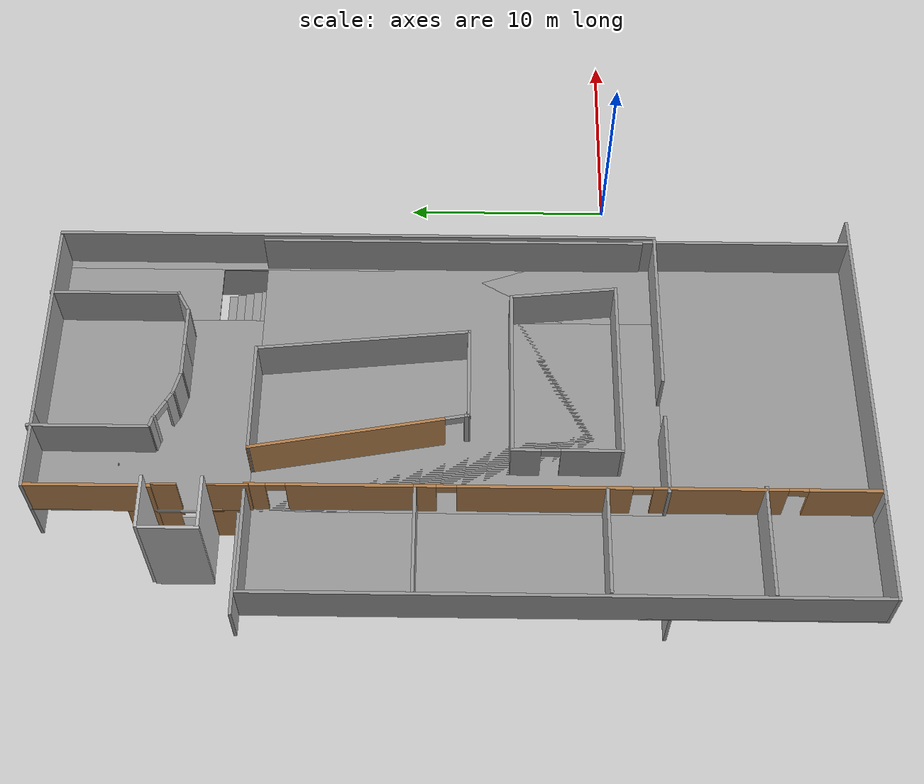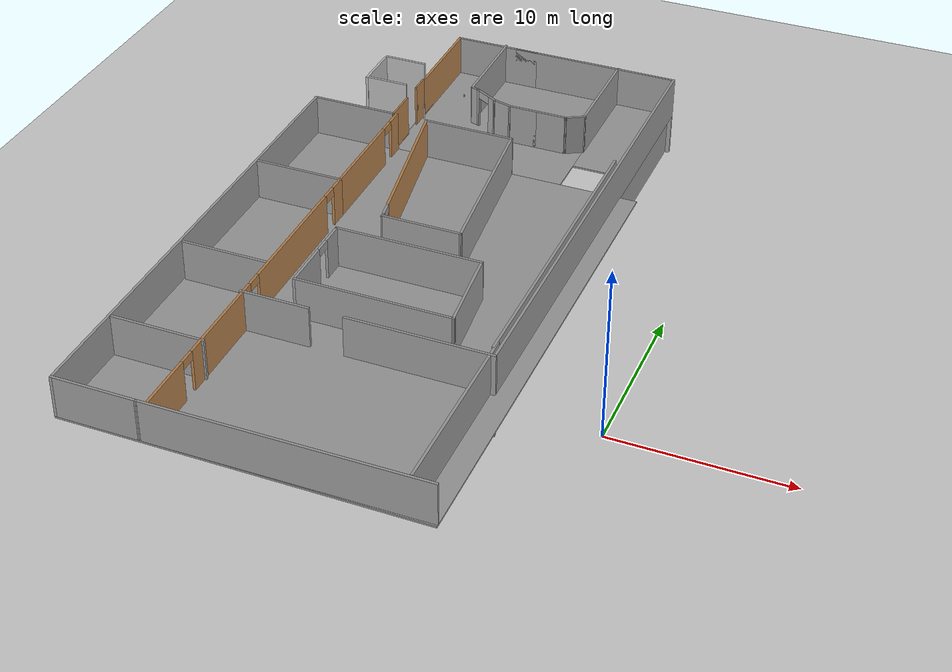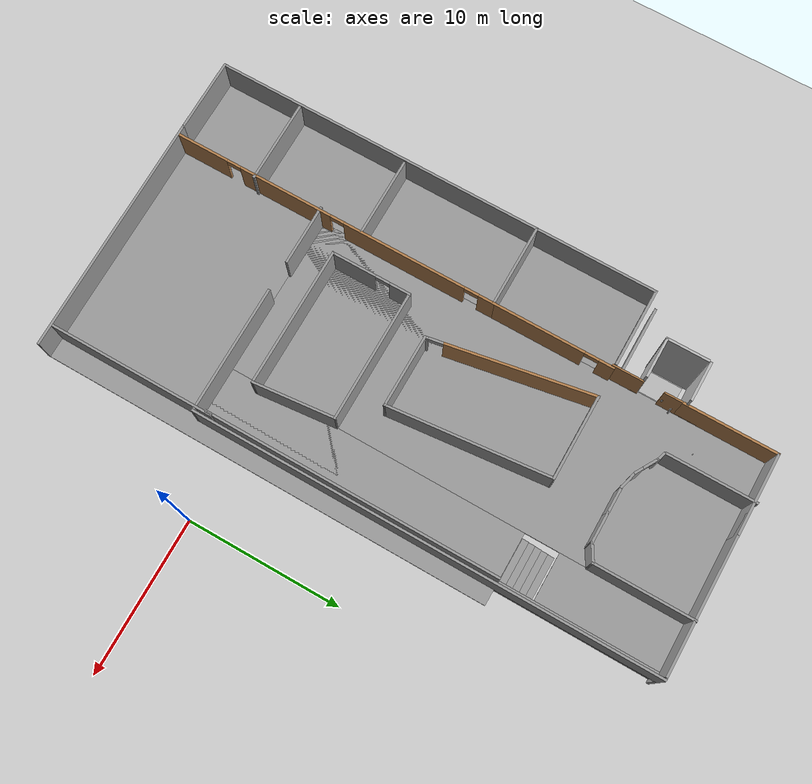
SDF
<sdf version="1.5">
 <world name="default">
  <light name="sun" type="directional">
   <pose>0 0 10 0 -0 0</pose>
   <diffuse>0.8 0.8 0.8 1</diffuse>
   <specular>0.2 0.2 0.2 1</specular>
   <attenuation>
    <range>1000</range>
    <constant>0.9</constant>
    <linear>0.01</linear>
    <quadratic>0.001</quadratic>
   </attenuation>
   <direction>-0.5 0.1 -0.9</direction>
  </light>
  <model name="ground_plane">
   <static>1</static>
   <link name="link">
    <collision name="collision">
     <geometry><plane><normal>0 0 1</normal><size>100 100</size></plane></geometry>
     <surface>
      <contact><collide_bitmask>65535</collide_bitmask></contact>
      <friction><ode><mu>100</mu><mu2>50</mu2></ode></friction>
     </surface>
    </collision>
    <visual name="visual">
     <cast_shadows>0</cast_shadows>
     <geometry><plane><normal>0 0 1</normal><size>100 100</size></plane></geometry>
     <material>
      <script><uri>file://media/materials/scripts/gazebo.material</uri><name>Gazebo/Grey</name></script>
     </material>
    </visual>
   </link>
  </model>
  <plugin name="elevator_event_plugin" filename="libSimEventsPlugin.so">
   <region><name>region1</name><volume><min>-18.64 20.19 1.02</min><max>-18.59 20.27 1.06</max></volume></region>
   <region><name>region2</name><volume><min>-18.65 20.18 3.6</min><max>-18.23 20.24 3.65</max></volume></region>
   <region><name>region_door1</name><volume><min>-18.86 18.8 2.6</min><max>-19.0 20.0 5.0</max></volume></region>
   <region><name>region_door0</name><volume><min>-18.86 18.8 0.1</min><max>-19.0 20.0 2.4</max></volume></region>
   <event>
    <name>region_door1_event</name>
    <type>occupied</type>
    <region>region_door1</region>
    <topic>~/elevator</topic>
    <msg_data>1</msg_data>
   </event>
   <event>
    <name>region_door0_event</name>
    <type>occupied</type>
    <region>region_door0</region>
    <topic>~/elevator</topic>
    <msg_data>0</msg_data>
   </event>
   <event>
    <name>region1_event</name>
    <type>occupied</type>
    <region>region1</region>
    <topic>~/elevator</topic>
    <msg_data>0</msg_data>
   </event>
   <event>
    <name>region2_event</name>
    <type>occupied</type>
    <region>region2</region>
    <topic>~/elevator</topic>
    <msg_data>1</msg_data>
   </event>
  </plugin>
  <model name="elevator">
   <pose>-20 20 0.001 -0 -0 -0</pose>
   <link name="link">
    <inertial>
     <mass>800</mass>
     <inertia><ixx>1</ixx><ixy>0</ixy><ixz>0</ixz><iyy>1</iyy><iyz>0</iyz><izz>1</izz></inertia>
    </inertial>
    <collision name="floor_collision"><geometry><box><size>2.25 2.25 0.02</size></box></geometry></collision>
    <visual name="floor_visual"><geometry><box><size>2.25 2.25 0.02</size></box></geometry></visual>
    <collision name="wall1_collision_bot_in">
     <pose>0.06 0.25 1.125 0 -0 0</pose>
     <geometry><box><size>0.01 0.09 0.36</size></box></geometry>
    </collision>
    <visual name="wall1_visual_bot_in">
     <pose>1 1.25 1.125 0 -0 1.577</pose>
     <geometry><box><size>0.01 0.09 0.36</size></box></geometry>
     <material>
      <script>
       <uri>model://elevator_shaft/materials/scripts</uri>
       <uri>model://elevator_shaft/materials/textures</uri>
       <name>Up_down/Diffuse</name>
      </script>
     </material>
    </visual>
   </link>
   <link name="ramp_new.SLDPRT">
    <pose>1.125 0.05  0 0 -0 -1.578</pose>
    <inertial>
     <pose>0.54997 0.16614 0.006311 0 -0 0</pose>
     <mass>500.1598</mass>
     <inertia>
      <ixx>0.071469</ixx>
      <ixy>-0.00013965</ixy>
      <ixz>-1.1196e-05</ixz>
      <iyy>0.50754</iyy>
      <iyz>-0.0013514</iyz>
      <izz>0.5788</izz>
     </inertia>
    </inertial>
    <collision name="ramp_new.SLDPRT_collision">
     <pose>0 0 0 1.5708 -0 0</pose>
     <geometry>
      <mesh><scale>1 1 1</scale><uri>model://ramp_new.SLDPRT/meshes/ramp_new.SLDPRT.STL</uri></mesh>
     </geometry>
    </collision>
    <visual name="ramp_new.SLDPRT_visual">
     <pose>0 0 0 1.5708 -0 0</pose>
     <geometry>
      <mesh><scale>1 1 1</scale><uri>model://ramp_new.SLDPRT/meshes/ramp_new.SLDPRT.STL</uri></mesh>
     </geometry>
    </visual>
   </link>
   <link name="door">
    <pose>1.0745 -0.5 1.125 0 -0 0</pose>
    <collision name="collision"><geometry><box><size>0.08 1.2 2.25</size></box></geometry></collision>
    <visual name="visual">
     <material>
      <script>
       <uri>model://elevator_door/materials/scripts</uri>
       <uri>model://elevator_door/materials/textures</uri>
       <name>Elevator_door/Picture</name>
      </script>
      <shader type="pixel"><normal_map>__default__</normal_map></shader>
      <ambient>1 1 1 1</ambient>
      <diffuse>1 1 1 1</diffuse>
      <specular>0 0 0 1</specular>
      <emissive>0 0 0 1</emissive>
     </material>
     <geometry><box><size>0.08 1.2 2.25</size></box></geometry>
    </visual>
    <inertial>
     <inertia><ixx>1</ixx><ixy>0</ixy><ixz>0</ixz><iyy>1</iyy><iyz>0</iyz><izz>1</izz></inertia>
     <mass>1</mass>
    </inertial>
   </link>
   <joint name="door" type="prismatic">
    <parent>link</parent>
    <child>door</child>
    <axis>
     <xyz>0 1 0</xyz>
     <limit><lower>0</lower><upper>1.19</upper><effort>0.525</effort></limit>
     <dynamics>
      <damping>1</damping>
      <spring_reference>0</spring_reference>
      <spring_stiffness>0</spring_stiffness>
     </dynamics>
     <use_parent_model_frame>0</use_parent_model_frame>
    </axis>
   </joint>
   <joint name="lift" type="prismatic">
    <parent>world</parent>
    <child>link</child>
    <axis>
     <xyz>0 0 1</xyz>
     <limit><lower>0</lower><upper>10</upper><effort>100000</effort></limit>
     <dynamics>
      <damping>50</damping>
      <spring_reference>0</spring_reference>
      <spring_stiffness>0</spring_stiffness>
     </dynamics>
     <use_parent_model_frame>0</use_parent_model_frame>
    </axis>
    <physics>
     <ode><implicit_spring_damper>1</implicit_spring_damper><limit><cfm>0</cfm><erp>0.2</erp></limit></ode>
    </physics>
   </joint>
   <plugin name="elevator_plugin" filename="libElevatorPlugin.so">
    <lift_joint>elevator::lift</lift_joint>
    <door_joint>elevator::door</door_joint>
    <floor_height>2.664</floor_height>
    <door_wait_time>20</door_wait_time>
    <topic>~/elevator</topic>
   </plugin>
  </model>
  <model name="elevator_shaft">
   <pose>-20 20 0 0 -0 0</pose>
   <static>1</static>
   <link name="link">
    <collision name="shaft_wall1_collision">
     <pose>0 1.45 3 0 -0 0</pose>
     <geometry><box><size>2.5 0.15 6</size></box></geometry>
    </collision>
    <visual name="shaft_wall1_visual">
     <pose>0 1.45 3 0 -0 0</pose>
     <geometry><box><size>2.5 0.15 6</size></box></geometry>
    </visual>
    <collision name="shaft_wall2_collision">
     <pose>0 -1.25 3 0 -0 0</pose>
     <geometry><box><size>2.5 0.15 6</size></box></geometry>
    </collision>
    <visual name="shaft_wall2_visual">
     <pose>0 -1.25 3 0 -0 0</pose>
     <geometry><box><size>2.5 0.15 6</size></box></geometry>
    </visual>
    <collision name="shaft_wall3_collision">
     <pose>-1.25 0 3 0 -0 0</pose>
     <geometry><box><size>0.15 2.7 6</size></box></geometry>
    </collision>
    <visual name="shaft_wall3_visual">
     <pose>-1.25 0 3 0 -0 0</pose>
     <geometry><box><size>0.15 2.7 6</size></box></geometry>
    </visual>
    <collision name="floor0_collision">
     <pose>1.19 0 0.0005 0 -0 0</pose>
     <geometry><box><size>0.12 2.5 0.001</size></box></geometry>
    </collision>
    <visual name="floor0_visual">
     <pose>1.19 0 0.0005 0 -0 0</pose>
     <geometry><box><size>0.12 2.5 0.001</size></box></geometry>
    </visual>
    <collision name="floor1_collision">
     <pose>1.19 0 2.525 0 -0 0</pose>
     <geometry><box><size>0.12 2.5 0.149</size></box></geometry>
    </collision>
    <visual name="floor1_visual">
     <pose>1.19 0 2.525 0 -0 0</pose>
     <geometry><box><size>0.12 2.5 0.149</size></box></geometry>
    </visual>
   </link>
  </model>
  <model name="elevator_2.675">
   <pose>-18.75 20 0 0 -0 0</pose>
   <link name="Wall_0">
    <collision name="Wall_0_Collision">
     <geometry><box><size>1.4 0.15 2.675</size></box></geometry>
     <pose>0 0 1.3375 0 -0 0</pose>
    </collision>
    <visual name="Wall_0_Visual">
     <pose>0 0 1.3375 0 -0 0</pose>
     <meta><layer>0</layer></meta>
     <geometry><box><size>1.4 0.15 2.675</size></box></geometry>
     <material><script><name>Gazebo/Wood</name><uri>__default__</uri></script></material>
    </visual>
    <pose>0 -1.875 0 0 0 -1.5708</pose>
   </link>
   <pose>0.02 -1.1 1.15 0 -0 0</pose>
   <link name="Wall_2">
    <collision name="Wall_2_Collision">
     <geometry><box><size>1.4 0.15 2.675</size></box></geometry>
     <pose>0 0 1.3375 0 -0 0</pose>
    </collision>
    <visual name="Wall_2_Visual">
     <pose>0 0 1.3375 0 -0 0</pose>
     <geometry><box><size>1.4 0.15 2.675</size></box></geometry>
     <material><script><name>Gazebo/Wood</name><uri>__default__</uri></script></material>
    </visual>
    <pose>0 1.875 0 0 0 -1.5708</pose>
   </link>
   <link name="right_elevator_wall_floor_0">
    <collision name="wall1_collision">
     <pose>0 0.6 1.125 0 -0 0</pose>
     <geometry><box><size>0.1 1.15 2.85</size></box></geometry>
    </collision>
    <visual name="wall1_visual">
     <pose>0 0.6 1.125 0 -0 0</pose>
     <geometry><box><size>0.1 1.15 2.85</size></box></geometry>
     <material><script><name>Gazebo/Wood</name><uri>__default__</uri></script></material>
    </visual>
    <collision name="wall1_collision_bot">
     <pose>0.06 0.3 1.125 0 -0 0</pose>
     <geometry><box><size>0.01 0.09 0.36</size></box></geometry>
    </collision>
    <visual name="wall1_visual_bot">
     <pose>0.06 0.25 1.125 0 -0 0</pose>
     <geometry><box><size>0.01 0.09 0.36</size></box></geometry>
     <material>
      <script>
       <uri>model://elevator_shaft_first_floor/materials/scripts</uri>
       <uri>model://elevator_shaft_first_floor/materials/textures</uri>
       <name>Up_down_first_floor/Diffuse</name>
      </script>
     </material>
    </visual>
   </link>
   <static>1</static>
  </model>
  <model name="Building_37">
   <pose>-14.375 11 0 0 -0 0</pose>
   <link name="Floor_0">
    <pose>2.5 1.3455 2.5 0 -0 0</pose>
    <visual name="Floor_0_Visual_0">
     <pose>-1.7875 0.15 0.05 0 -0 0</pose>
     <meta><layer>1</layer></meta>
     <geometry><box><size>10.325 29.15 0.1</size></box></geometry>
     <material>
      <script><uri>file://media/materials/scripts/gazebo.material</uri><name>Gazebo/Grey</name></script>
      <ambient>1 1 1 1</ambient>
     </material>
    </visual>
    <collision name="Floor_0_Collision_0">
     <geometry><box><size>10.325 29.15 0.1</size></box></geometry>
     <pose>-1.7875 0.15 0.05 0 -0 0</pose>
    </collision>
    <visual name="Floor_0_Visual_1">
     <pose>5.1625 -8 0.05 0 -0 0</pose>
     <meta><layer>1</layer></meta>
     <geometry><box><size>3.575 12.85 0.1</size></box></geometry>
     <material>
      <script><uri>file://media/materials/scripts/gazebo.material</uri><name>Gazebo/Grey</name></script>
      <ambient>1 1 1 1</ambient>
     </material>
    </visual>
    <collision name="Floor_0_Collision_1">
     <geometry><box><size>3.575 12.85 0.1</size></box></geometry>
     <pose>5.1625 -8 0.05 0 -0 0</pose>
    </collision>
    <visual name="Floor_0_Visual_2">
     <pose>6.6625 6.567 0.05 0 -0 0</pose>
     <meta><layer>1</layer></meta>
     <geometry><box><size>0.575 16.325 0.1</size></box></geometry>
     <material>
      <script><uri>file://media/materials/scripts/gazebo.material</uri><name>Gazebo/Grey</name></script>
      <ambient>1 1 1 1</ambient>
     </material>
    </visual>
    <collision name="Floor_0_Collision_2">
     <geometry><box><size>0.575 16.325 0.1</size></box></geometry>
     <pose>6.6625 6.567 0.05 0 -0 0</pose>
    </collision>
    <visual name="Floor_0_Visual_3">
     <pose>4.875 10.817 0.05 0 -0 0</pose>
     <meta><layer>1</layer></meta>
     <geometry><box><size>3 7.825 0.1</size></box></geometry>
     <material>
      <script><uri>file://media/materials/scripts/gazebo.material</uri><name>Gazebo/Grey</name></script>
      <ambient>1 1 1 1</ambient>
     </material>
    </visual>
    <collision name="Floor_0_Collision_3">
     <geometry><box><size>3 7.825 0.1</size></box></geometry>
     <pose>4.875 10.817 0.05 0 -0 0</pose>
    </collision>
   </link>
   <link name="Stairs_1">
    <visual name="Stairs_1_Visual_0">
     <pose>7.375 8.0375 0.0625 0 -0 0</pose>
     <meta><layer>2</layer></meta>
     <geometry><box><size>3 0.425 0.125</size></box></geometry>
     <material>
      <script><uri>file://media/materials/scripts/gazebo.material</uri><name>Gazebo/Grey</name></script>
      <ambient>1 1 1 1</ambient>
     </material>
    </visual>
    <collision name="Stairs_1_Collision_0">
     <geometry><box><size>3 0.425 0.125</size></box></geometry>
     <pose>7.375 8.0375 0.0625 0 -0 0</pose>
    </collision>
    <visual name="Stairs_1_Visual_1">
     <pose>7.375 7.6125 0.1875 0 -0 0</pose>
     <meta><layer>2</layer></meta>
     <geometry><box><size>3 0.425 0.125</size></box></geometry>
     <material>
      <script><uri>file://media/materials/scripts/gazebo.material</uri><name>Gazebo/Grey</name></script>
      <ambient>1 1 1 1</ambient>
     </material>
    </visual>
    <collision name="Stairs_1_Collision_1">
     <geometry><box><size>3 0.425 0.125</size></box></geometry>
     <pose>7.375 7.6125 0.1875 0 -0 0</pose>
    </collision>
    <visual name="Stairs_1_Visual_2">
     <pose>7.375 7.1875 0.3125 0 -0 0</pose>
     <meta><layer>2</layer></meta>
     <geometry><box><size>3 0.425 0.125</size></box></geometry>
     <material>
      <script><uri>file://media/materials/scripts/gazebo.material</uri><name>Gazebo/Grey</name></script>
      <ambient>1 1 1 1</ambient>
     </material>
    </visual>
    <collision name="Stairs_1_Collision_2">
     <geometry><box><size>3 0.425 0.125</size></box></geometry>
     <pose>7.375 7.1875 0.3125 0 -0 0</pose>
    </collision>
    <visual name="Stairs_1_Visual_3">
     <pose>7.375 6.7625 0.4375 0 -0 0</pose>
     <meta><layer>2</layer></meta>
     <geometry><box><size>3 0.425 0.125</size></box></geometry>
     <material>
      <script><uri>file://media/materials/scripts/gazebo.material</uri><name>Gazebo/Grey</name></script>
      <ambient>1 1 1 1</ambient>
     </material>
    </visual>
    <collision name="Stairs_1_Collision_3">
     <geometry><box><size>3 0.425 0.125</size></box></geometry>
     <pose>7.375 6.7625 0.4375 0 -0 0</pose>
    </collision>
    <visual name="Stairs_1_Visual_4">
     <pose>7.375 6.3375 0.5625 0 -0 0</pose>
     <meta><layer>2</layer></meta>
     <geometry><box><size>3 0.425 0.125</size></box></geometry>
     <material>
      <script><uri>file://media/materials/scripts/gazebo.material</uri><name>Gazebo/Grey</name></script>
      <ambient>1 1 1 1</ambient>
     </material>
    </visual>
    <collision name="Stairs_1_Collision_4">
     <geometry><box><size>3 0.425 0.125</size></box></geometry>
     <pose>7.375 6.3375 0.5625 0 -0 0</pose>
    </collision>
    <visual name="Stairs_1_Visual_5">
     <pose>7.375 5.9125 0.6875 0 -0 0</pose>
     <meta><layer>2</layer></meta>
     <geometry><box><size>3 0.425 0.125</size></box></geometry>
     <material>
      <script><uri>file://media/materials/scripts/gazebo.material</uri><name>Gazebo/Grey</name></script>
      <ambient>1 1 1 1</ambient>
     </material>
    </visual>
    <collision name="Stairs_1_Collision_5">
     <geometry><box><size>3 0.425 0.125</size></box></geometry>
     <pose>7.375 5.9125 0.6875 0 -0 0</pose>
    </collision>
    <visual name="Stairs_1_Visual_6">
     <pose>7.375 5.4875 0.8125 0 -0 0</pose>
     <meta><layer>2</layer></meta>
     <geometry><box><size>3 0.425 0.125</size></box></geometry>
     <material>
      <script><uri>file://media/materials/scripts/gazebo.material</uri><name>Gazebo/Grey</name></script>
      <ambient>1 1 1 1</ambient>
     </material>
    </visual>
    <collision name="Stairs_1_Collision_6">
     <geometry><box><size>3 0.425 0.125</size></box></geometry>
     <pose>7.375 5.4875 0.8125 0 -0 0</pose>
    </collision>
    <visual name="Stairs_1_Visual_7">
     <pose>7.375 5.0625 0.9375 0 -0 0</pose>
     <meta><layer>2</layer></meta>
     <geometry><box><size>3 0.425 0.125</size></box></geometry>
     <material>
      <script><uri>file://media/materials/scripts/gazebo.material</uri><name>Gazebo/Grey</name></script>
      <ambient>1 1 1 1</ambient>
     </material>
    </visual>
    <collision name="Stairs_1_Collision_7">
     <geometry><box><size>3 0.425 0.125</size></box></geometry>
     <pose>7.375 5.0625 0.9375 0 -0 0</pose>
    </collision>
    <visual name="Stairs_1_Visual_8">
     <pose>7.375 4.6375 1.0625 0 -0 0</pose>
     <meta><layer>2</layer></meta>
     <geometry><box><size>3 0.425 0.125</size></box></geometry>
     <material>
      <script><uri>file://media/materials/scripts/gazebo.material</uri><name>Gazebo/Grey</name></script>
      <ambient>1 1 1 1</ambient>
     </material>
    </visual>
    <collision name="Stairs_1_Collision_8">
     <geometry><box><size>3 0.425 0.125</size></box></geometry>
     <pose>7.375 4.6375 1.0625 0 -0 0</pose>
    </collision>
    <visual name="Stairs_1_Visual_9">
     <pose>7.375 4.2125 1.1875 0 -0 0</pose>
     <meta><layer>2</layer></meta>
     <geometry><box><size>3 0.425 0.125</size></box></geometry>
     <material>
      <script><uri>file://media/materials/scripts/gazebo.material</uri><name>Gazebo/Grey</name></script>
      <ambient>1 1 1 1</ambient>
     </material>
    </visual>
    <collision name="Stairs_1_Collision_9">
     <geometry><box><size>3 0.425 0.125</size></box></geometry>
     <pose>7.375 4.2125 1.1875 0 -0 0</pose>
    </collision>
    <visual name="Stairs_1_Visual_10">
     <pose>7.375 3.7875 1.3125 0 -0 0</pose>
     <meta><layer>2</layer></meta>
     <geometry><box><size>3 0.425 0.125</size></box></geometry>
     <material>
      <script><uri>file://media/materials/scripts/gazebo.material</uri><name>Gazebo/Grey</name></script>
      <ambient>1 1 1 1</ambient>
     </material>
    </visual>
    <collision name="Stairs_1_Collision_10">
     <geometry><box><size>3 0.425 0.125</size></box></geometry>
     <pose>7.375 3.7875 1.3125 0 -0 0</pose>
    </collision>
    <visual name="Stairs_1_Visual_11">
     <pose>7.375 3.3625 1.4375 0 -0 0</pose>
     <meta><layer>2</layer></meta>
     <geometry><box><size>3 0.425 0.125</size></box></geometry>
     <material>
      <script><uri>file://media/materials/scripts/gazebo.material</uri><name>Gazebo/Grey</name></script>
      <ambient>1 1 1 1</ambient>
     </material>
    </visual>
    <collision name="Stairs_1_Collision_11">
     <geometry><box><size>3 0.425 0.125</size></box></geometry>
     <pose>7.375 3.3625 1.4375 0 -0 0</pose>
    </collision>
    <visual name="Stairs_1_Visual_12">
     <pose>7.375 2.9375 1.5625 0 -0 0</pose>
     <meta><layer>2</layer></meta>
     <geometry><box><size>3 0.425 0.125</size></box></geometry>
     <material>
      <script><uri>file://media/materials/scripts/gazebo.material</uri><name>Gazebo/Grey</name></script>
      <ambient>1 1 1 1</ambient>
     </material>
    </visual>
    <collision name="Stairs_1_Collision_12">
     <geometry><box><size>3 0.425 0.125</size></box></geometry>
     <pose>7.375 2.9375 1.5625 0 -0 0</pose>
    </collision>
    <visual name="Stairs_1_Visual_13">
     <pose>7.375 2.5125 1.6875 0 -0 0</pose>
     <meta><layer>2</layer></meta>
     <geometry><box><size>3 0.425 0.125</size></box></geometry>
     <material>
      <script><uri>file://media/materials/scripts/gazebo.material</uri><name>Gazebo/Grey</name></script>
      <ambient>1 1 1 1</ambient>
     </material>
    </visual>
    <collision name="Stairs_1_Collision_13">
     <geometry><box><size>3 0.425 0.125</size></box></geometry>
     <pose>7.375 2.5125 1.6875 0 -0 0</pose>
    </collision>
    <visual name="Stairs_1_Visual_14">
     <pose>7.375 2.0875 1.8125 0 -0 0</pose>
     <meta><layer>2</layer></meta>
     <geometry><box><size>3 0.425 0.125</size></box></geometry>
     <material>
      <script><uri>file://media/materials/scripts/gazebo.material</uri><name>Gazebo/Grey</name></script>
      <ambient>1 1 1 1</ambient>
     </material>
    </visual>
    <collision name="Stairs_1_Collision_14">
     <geometry><box><size>3 0.425 0.125</size></box></geometry>
     <pose>7.375 2.0875 1.8125 0 -0 0</pose>
    </collision>
    <visual name="Stairs_1_Visual_15">
     <pose>7.375 1.6625 1.9375 0 -0 0</pose>
     <meta><layer>2</layer></meta>
     <geometry><box><size>3 0.425 0.125</size></box></geometry>
     <material>
      <script><uri>file://media/materials/scripts/gazebo.material</uri><name>Gazebo/Grey</name></script>
      <ambient>1 1 1 1</ambient>
     </material>
    </visual>
    <collision name="Stairs_1_Collision_15">
     <geometry><box><size>3 0.425 0.125</size></box></geometry>
     <pose>7.375 1.6625 1.9375 0 -0 0</pose>
    </collision>
    <visual name="Stairs_1_Visual_16">
     <pose>7.375 1.2375 2.0625 0 -0 0</pose>
     <meta><layer>2</layer></meta>
     <geometry><box><size>3 0.425 0.125</size></box></geometry>
     <material>
      <script><uri>file://media/materials/scripts/gazebo.material</uri><name>Gazebo/Grey</name></script>
      <ambient>1 1 1 1</ambient>
     </material>
    </visual>
    <collision name="Stairs_1_Collision_16">
     <geometry><box><size>3 0.425 0.125</size></box></geometry>
     <pose>7.375 1.2375 2.0625 0 -0 0</pose>
    </collision>
    <visual name="Stairs_1_Visual_17">
     <pose>7.375 0.8125 2.1875 0 -0 0</pose>
     <meta><layer>2</layer></meta>
     <geometry><box><size>3 0.425 0.125</size></box></geometry>
     <material>
      <script><uri>file://media/materials/scripts/gazebo.material</uri><name>Gazebo/Grey</name></script>
      <ambient>1 1 1 1</ambient>
     </material>
    </visual>
    <collision name="Stairs_1_Collision_17">
     <geometry><box><size>3 0.425 0.125</size></box></geometry>
     <pose>7.375 0.8125 2.1875 0 -0 0</pose>
    </collision>
    <visual name="Stairs_1_Visual_18">
     <pose>7.375 0.3875 2.3125 0 -0 0</pose>
     <meta><layer>2</layer></meta>
     <geometry><box><size>3 0.425 0.125</size></box></geometry>
     <material>
      <script><uri>file://media/materials/scripts/gazebo.material</uri><name>Gazebo/Grey</name></script>
      <ambient>1 1 1 1</ambient>
     </material>
    </visual>
    <collision name="Stairs_1_Collision_18">
     <geometry><box><size>3 0.425 0.125</size></box></geometry>
     <pose>7.375 0.3875 2.3125 0 -0 0</pose>
    </collision>
    <visual name="Stairs_1_Visual_19">
     <pose>7.375 -0.037501 2.4375 0 -0 0</pose>
     <meta><layer>2</layer></meta>
     <geometry><box><size>3 0.425 0.125</size></box></geometry>
     <material>
      <script><uri>file://media/materials/scripts/gazebo.material</uri><name>Gazebo/Grey</name></script>
      <ambient>1 1 1 1</ambient>
     </material>
    </visual>
    <collision name="Stairs_1_Collision_19">
     <geometry><box><size>3 0.425 0.125</size></box></geometry>
     <pose>7.375 -0.037501 2.4375 0 -0 0</pose>
    </collision>
   </link>
   <link name="Wall_27">
    <collision name="Wall_27_Collision">
     <geometry><box><size>6.9 0.15 2.5</size></box></geometry>
     <pose>0 0 1.25 0 -0 0</pose>
    </collision>
    <visual name="Wall_27_Visual">
     <pose>0 0 1.25 0 -0 0</pose>
     <geometry><box><size>6.9 0.15 2.5</size></box></geometry>
     <material>
      <script><uri>file://media/materials/scripts/gazebo.material</uri><name>Gazebo/Grey</name></script>
      <ambient>1 1 1 1</ambient>
     </material>
    </visual>
    <pose>-6 -13 0 0 -0 0</pose>
   </link>
   <link name="Wall_28">
    <collision name="Wall_28_Collision">
     <geometry><box><size>3.15 0.15 2.5</size></box></geometry>
     <pose>0 0 1.25 0 -0 0</pose>
    </collision>
    <visual name="Wall_28_Visual">
     <pose>0 0 1.25 0 -0 0</pose>
     <geometry><box><size>3.15 0.15 2.5</size></box></geometry>
     <material>
      <script><uri>file://media/materials/scripts/gazebo.material</uri><name>Gazebo/Grey</name></script>
      <ambient>1 1 1 1</ambient>
     </material>
    </visual>
    <pose>-2.625 -14.5 0 0 0 -1.5708</pose>
   </link>
   <link name="Wall_30">
    <collision name="Wall_30_Collision">
     <geometry><box><size>10.15 0.15 2.5</size></box></geometry>
     <pose>0 0 1.25 0 -0 0</pose>
    </collision>
    <visual name="Wall_30_Visual">
     <pose>0 0 1.25 0 -0 0</pose>
     <geometry><box><size>10.15 0.15 2.5</size></box></geometry>
     <material>
      <script><uri>file://media/materials/scripts/gazebo.material</uri><name>Gazebo/Grey</name></script>
      <ambient>1 1 1 1</ambient>
     </material>
    </visual>
    <pose>4.375 -13 0 0 -0 3.14159</pose>
   </link>
   <link name="Wall_31">
    <collision name="Wall_31_Collision">
     <geometry><box><size>3.15 0.15 2.5</size></box></geometry>
     <pose>0 0 1.25 0 -0 0</pose>
    </collision>
    <visual name="Wall_31_Visual">
     <pose>0 0 1.25 0 -0 0</pose>
     <geometry><box><size>3.15 0.15 2.5</size></box></geometry>
     <material>
      <script><uri>file://media/materials/scripts/gazebo.material</uri><name>Gazebo/Grey</name></script>
      <ambient>1 1 1 1</ambient>
     </material>
    </visual>
    <pose>-0.625 -14.5 0 0 0 -1.5708</pose>
   </link>
   <link name="Wall_33">
    <collision name="Wall_33_Collision">
     <geometry><box><size>5.9 0.15 2.5</size></box></geometry>
     <pose>0 0 1.25 0 -0 0</pose>
    </collision>
    <visual name="Wall_33_Visual">
     <pose>0 0 1.25 0 -0 0</pose>
     <meta><layer>3</layer></meta>
     <geometry><box><size>5.9 0.15 2.5</size></box></geometry>
     <material><script><name>Gazebo/Wood</name><uri>__default__</uri></script></material>
    </visual>
    <pose>-4.375 13.125 2.5 0 0 -1.5708</pose>
   </link>
   <pose>-4.35 9.85 3.7 0 -0 0</pose>
   <link name="right_elevator_wall_floor_1">
    <collision name="wall1_collision">
     <pose>-4.32 9.6 3.7 0 -0 0</pose>
     <geometry><box><size>0.1 1.15 2.85</size></box></geometry>
    </collision>
    <visual name="wall1_visual">
     <pose>-4.35 9.6 3.7 0 -0 0</pose>
     <geometry><box><size>0.1 1.15 2.85</size></box></geometry>
     <material><script><name>Gazebo/Wood</name><uri>__default__</uri></script></material>
    </visual>
    <collision name="wall1_collision_bot">
     <pose>-4.3 9.2 3.7 0 -0 0</pose>
     <geometry><box><size>0.01 0.09 0.36</size></box></geometry>
    </collision>
    <visual name="wall1_visual_bot">
     <pose>-4.3 9.2 3.7 0 -0 0</pose>
     <geometry><box><size>0.01 0.09 0.36</size></box></geometry>
     <material>
      <script>
       <uri>model://elevator_shaft_second_floor/materials/scripts</uri>
       <uri>model://elevator_shaft_second_floor/materials/textures</uri>
       <name>Up_down_second_floor/Diffuse</name>
      </script>
     </material>
    </visual>
   </link>
   <link name="left_elevator_wall_floor_1">
    <collision name="wall1_collision_l">
     <pose>-4.32 6.8 3.7 0 -0 0</pose>
     <geometry><box><size>0.1 2 2.85</size></box></geometry>
    </collision>
    <visual name="wall1_visual_l">
     <pose>-4.35 6.8 3.7 0 -0 0</pose>
     <geometry><box><size>0.1 2 2.85</size></box></geometry>
     <material><script><name>Gazebo/Wood</name><uri>__default__</uri></script></material>
    </visual>
   </link>
   <link name="Wall_34">
    <collision name="Wall_34_Collision">
     <geometry><box><size>5.15 0.15 2.5</size></box></geometry>
     <pose>0 0 1.25 0 -0 0</pose>
    </collision>
    <visual name="Wall_34_Visual">
     <pose>0 0 1.25 0 -0 0</pose>
     <meta><layer>3</layer></meta>
     <geometry><box><size>5.15 0.15 2.5</size></box></geometry>
     <material>
      <script><uri>file://media/materials/scripts/gazebo.material</uri><name>Gazebo/Grey</name></script>
      <ambient>1 1 1 1</ambient>
     </material>
    </visual>
    <pose>-1.875 16 2.5 0 -0 0</pose>
   </link>
   <link name="Wall_35">
    <collision name="Wall_35_Collision">
     <geometry><box><size>6.9 0.15 2.5</size></box></geometry>
     <pose>0 0 1.25 0 -0 0</pose>
    </collision>
    <visual name="Wall_35_Visual">
     <pose>-1.7 0 1.25 0 -0 0</pose>
     <meta><layer>3</layer></meta>
     <geometry><box><size>9.9 0.15 2.5</size></box></geometry>
     <material>
      <script><uri>file://media/materials/scripts/gazebo.material</uri><name>Gazebo/Grey</name></script>
      <ambient>1 1 1 1</ambient>
     </material>
    </visual>
    <pose>6 16 2.5 0 -0 0</pose>
   </link>
   <pose>-4.32 7.95 3.7 0 -0 0</pose>
   <link name="Wall_38">
    <pose>-1.5 1 2.5 0 0 -1.39755</pose>
    <visual name="Wall_38_Visual_0">
     <pose>-0.58726 0 1.25 0 -0 0</pose>
     <meta><layer>3</layer></meta>
     <geometry><box><size>9.12745 0.15 2.5</size></box></geometry>
     <material>
      <script><uri>file://media/materials/scripts/gazebo.material</uri><name>Gazebo/Wood</name></script>
      <ambient>1 1 1 1</ambient>
     </material>
    </visual>
    <collision name="Wall_38_Collision_0">
     <geometry><box><size>9.12745 0.15 2.5</size></box></geometry>
     <pose>-0.58726 0 1.25 0 -0 0</pose>
    </collision>
    <visual name="Wall_38_Visual_1">
     <pose>5.01372 0 1.25 0 -0 0</pose>
     <meta><layer>3</layer></meta>
     <geometry><box><size>0.274521 0.15 2.5</size></box></geometry>
     <material>
      <script><uri>file://media/materials/scripts/gazebo.material</uri><name>Gazebo/Grey</name></script>
      <ambient>1 1 1 1</ambient>
     </material>
    </visual>
    <collision name="Wall_38_Collision_1">
     <geometry><box><size>0.274521 0.15 2.5</size></box></geometry>
     <pose>5.01372 0 1.25 0 -0 0</pose>
    </collision>
    <visual name="Wall_38_Visual_2">
     <pose>4.42646 0 2.25 0 -0 0</pose>
     <meta><layer>3</layer></meta>
     <geometry><box><size>0.9 0.15 0.5</size></box></geometry>
     <material>
      <script><uri>file://media/materials/scripts/gazebo.material</uri><name>Gazebo/Grey</name></script>
      <ambient>1 1 1 1</ambient>
     </material>
    </visual>
    <collision name="Wall_38_Collision_2">
     <geometry><box><size>0.9 0.15 0.5</size></box></geometry>
     <pose>4.42646 0 2.25 0 -0 0</pose>
    </collision>
   </link>
   <link name="Wall_39">
    <collision name="Wall_39_Collision">
     <geometry><box><size>4.65 0.15 2.5</size></box></geometry>
     <pose>0 0 1.25 0 -0 0</pose>
    </collision>
    <visual name="Wall_39_Visual">
     <pose>0 0 1.25 0 -0 0</pose>
     <meta><layer>3</layer></meta>
     <geometry><box><size>4.65 0.15 2.5</size></box></geometry>
     <material>
      <script><uri>file://media/materials/scripts/gazebo.material</uri><name>Gazebo/Grey</name></script>
      <ambient>1 1 1 1</ambient>
     </material>
    </visual>
    <pose>1.625 -4 2.5 0 -0 0</pose>
   </link>
   <link name="Wall_4">
    <collision name="Wall_4_Collision">
     <geometry><box><size>5.15 0.15 2.5</size></box></geometry>
     <pose>0 0 1.25 0 -0 0</pose>
    </collision>
    <visual name="Wall_4_Visual">
     <pose>0 0 1.25 0 -0 0</pose>
     <geometry><box><size>5.15 0.15 2.5</size></box></geometry>
     <material>
      <script><uri>file://media/materials/scripts/gazebo.material</uri><name>Gazebo/Grey</name></script>
      <ambient>1 1 1 1</ambient>
     </material>
    </visual>
    <pose>-1.875 16 0 0 -0 0</pose>
   </link>
   <link name="Wall_40">
    <collision name="Wall_40_Collision">
     <geometry><box><size>10.1999 0.15 2.5</size></box></geometry>
     <pose>0 0 1.25 0 -0 0</pose>
    </collision>
    <visual name="Wall_40_Visual">
     <pose>0 0 1.25 0 -0 0</pose>
     <meta><layer>3</layer></meta>
     <geometry><box><size>10.1999 0.15 2.5</size></box></geometry>
     <material>
      <script><uri>file://media/materials/scripts/gazebo.material</uri><name>Gazebo/Grey</name></script>
      <ambient>1 1 1 1</ambient>
     </material>
    </visual>
    <pose>3.375 1 2.5 0 -0 1.67047</pose>
   </link>
   <link name="Wall_41">
    <collision name="Wall_41_Collision">
     <geometry><box><size>5.4 0.15 2.5</size></box></geometry>
     <pose>0 0 1.25 0 -0 0</pose>
    </collision>
    <visual name="Wall_41_Visual">
     <pose>0 0 1.25 0 -0 0</pose>
     <meta><layer>3</layer></meta>
     <geometry><box><size>5.4 0.15 2.5</size></box></geometry>
     <material>
      <script><uri>file://media/materials/scripts/gazebo.material</uri><name>Gazebo/Grey</name></script>
      <ambient>1 1 1 1</ambient>
     </material>
    </visual>
    <pose>0.25 6 2.5 0 -0 3.14159</pose>
   </link>
   <link name="Wall_42">
    <collision name="Wall_42_Collision">
     <geometry><box><size>8.4 0.15 2.5</size></box></geometry>
     <pose>0 0 1.25 0 -0 0</pose>
    </collision>
    <visual name="Wall_42_Visual">
     <pose>0 0 1.25 0 -0 0</pose>
     <meta><layer>3</layer></meta>
     <geometry><box><size>8.4 0.15 2.5</size></box></geometry>
     <material>
      <script><uri>file://media/materials/scripts/gazebo.material</uri><name>Gazebo/Grey</name></script>
      <ambient>1 1 1 1</ambient>
     </material>
    </visual>
    <pose>1.75 -6 2.5 0 -0 0</pose>
   </link>
   <link name="Wall_43">
    <collision name="Wall_43_Collision">
     <geometry><box><size>5.17494 0.15 2.5</size></box></geometry>
     <pose>0 0 1.25 0 -0 0</pose>
    </collision>
    <visual name="Wall_43_Visual">
     <pose>0 0 1.25 0 -0 0</pose>
     <meta><layer>3</layer></meta>
     <geometry><box><size>5.17494 0.15 2.5</size></box></geometry>
     <material>
      <script><uri>file://media/materials/scripts/gazebo.material</uri><name>Gazebo/Grey</name></script>
      <ambient>1 1 1 1</ambient>
     </material>
    </visual>
    <pose>6.125 -8.5 2.5 0 0 -1.47113</pose>
   </link>
   <link name="Wall_44">
    <collision name="Wall_44_Collision">
     <geometry><box><size>8.9 0.15 2.5</size></box></geometry>
     <pose>0 0 1.25 0 -0 0</pose>
    </collision>
    <visual name="Wall_44_Visual">
     <pose>0 0 1.25 0 -0 0</pose>
     <meta><layer>3</layer></meta>
     <geometry><box><size>8.9 0.15 2.5</size></box></geometry>
     <material>
      <script><uri>file://media/materials/scripts/gazebo.material</uri><name>Gazebo/Grey</name></script>
      <ambient>1 1 1 1</ambient>
     </material>
    </visual>
    <pose>2 -11 2.5 0 -0 3.14159</pose>
   </link>
   <link name="Wall_45">
    <pose>-2.375 -8.5 2.5 0 -0 1.5708</pose>
    <visual name="Wall_45_Visual_0">
     <pose>-1.13354 0 1.25 0 -0 0</pose>
     <meta><layer>3</layer></meta>
     <geometry><box><size>2.88293 0.15 2.5</size></box></geometry>
     <material>
      <script><uri>file://media/materials/scripts/gazebo.material</uri><name>Gazebo/Grey</name></script>
      <ambient>1 1 1 1</ambient>
     </material>
    </visual>
    <collision name="Wall_45_Collision_0">
     <geometry><box><size>2.88293 0.15 2.5</size></box></geometry>
     <pose>-1.13354 0 1.25 0 -0 0</pose>
    </collision>
    <visual name="Wall_45_Visual_1">
     <pose>1.89146 0 1.25 0 -0 0</pose>
     <meta><layer>3</layer></meta>
     <geometry><box><size>1.36708 0.15 2.5</size></box></geometry>
     <material>
      <script><uri>file://media/materials/scripts/gazebo.material</uri><name>Gazebo/Grey</name></script>
      <ambient>1 1 1 1</ambient>
     </material>
    </visual>
    <collision name="Wall_45_Collision_1">
     <geometry><box><size>1.36708 0.15 2.5</size></box></geometry>
     <pose>1.89146 0 1.25 0 -0 0</pose>
    </collision>
    <visual name="Wall_45_Visual_2">
     <pose>0.757925 0 2.25 0 -0 0</pose>
     <meta><layer>3</layer></meta>
     <geometry><box><size>0.9 0.15 0.5</size></box></geometry>
     <material>
      <script><uri>file://media/materials/scripts/gazebo.material</uri><name>Gazebo/Grey</name></script>
      <ambient>1 1 1 1</ambient>
     </material>
    </visual>
    <collision name="Wall_45_Collision_2">
     <geometry><box><size>0.9 0.15 0.5</size></box></geometry>
     <pose>0.757925 0 2.25 0 -0 0</pose>
    </collision>
   </link>
   <link name="Wall_46">
    <collision name="Wall_46_Collision">
     <geometry><box><size>29.15 0.15 2.5</size></box></geometry>
     <pose>0 0 1.25 0 -0 0</pose>
    </collision>
    <visual name="Wall_46_Visual">
     <pose>0 0 1.25 0 -0 0</pose>
     <meta><layer>3</layer></meta>
     <geometry><box><size>29.15 0.15 2.5</size></box></geometry>
     <material>
      <script><uri>file://media/materials/scripts/gazebo.material</uri><name>Gazebo/Grey</name></script>
      <ambient>1 1 1 1</ambient>
     </material>
    </visual>
    <pose>9.375 1.5 2.5 0 0 -1.5708</pose>
   </link>
   <link name="Wall_47">
    <collision name="Wall_47_Collision">
     <geometry><box><size>3.9 0.15 2.5</size></box></geometry>
     <pose>0 0 1.25 0 -0 0</pose>
    </collision>
    <visual name="Wall_47_Visual">
     <pose>0 0 1.25 0 -0 0</pose>
     <meta><layer>3</layer></meta>
     <geometry><box><size>3.9 0.15 2.5</size></box></geometry>
     <material>
      <script><uri>file://media/materials/scripts/gazebo.material</uri><name>Gazebo/Grey</name></script>
      <ambient>1 1 1 1</ambient>
     </material>
    </visual>
    <pose>-2.5 -13 2.5 0 -0 0</pose>
   </link>
   <link name="Wall_49">
    <collision name="Wall_49_Collision">
     <geometry><box><size>8.15 0.15 2.5</size></box></geometry>
     <pose>0 0 1.25 0 -0 0</pose>
    </collision>
    <visual name="Wall_49_Visual">
     <pose>0 0 1.25 0 -0 0</pose>
     <meta><layer>3</layer></meta>
     <geometry><box><size>8.15 0.15 2.5</size></box></geometry>
     <material>
      <script><uri>file://media/materials/scripts/gazebo.material</uri><name>Gazebo/Grey</name></script>
      <ambient>1 1 1 1</ambient>
     </material>
    </visual>
    <pose>5.375 -13 2.5 0 -0 3.14159</pose>
   </link>
   <link name="Wall_6">
    <collision name="Wall_6_Collision">
     <geometry><box><size>6.9 0.15 2.5</size></box></geometry>
     <pose>0 0 1.25 0 -0 0</pose>
    </collision>
    <visual name="Wall_6_Visual">
     <pose>0 0 1.25 0 -0 0</pose>
     <geometry><box><size>6.9 0.15 2.5</size></box></geometry>
     <material>
      <script><uri>file://media/materials/scripts/gazebo.material</uri><name>Gazebo/Grey</name></script>
      <ambient>1 1 1 1</ambient>
     </material>
    </visual>
    <pose>6 16 0 0 -0 0</pose>
   </link>
   <link name="Wall_8">
    <collision name="Wall_8_Collision">
     <geometry><box><size>5.15 0.15 2.5</size></box></geometry>
     <pose>0 0 1.25 0 -0 0</pose>
    </collision>
    <visual name="Wall_8_Visual">
     <pose>0 0 1.25 0 -0 0</pose>
     <geometry><box><size>5.15 0.15 2.5</size></box></geometry>
     <material>
      <script><uri>file://media/materials/scripts/gazebo.material</uri><name>Gazebo/Grey</name></script>
      <ambient>1 1 1 1</ambient>
     </material>
    </visual>
    <pose>-6.875 6.5 0 0 -0 3.14159</pose>
   </link>
   <static>1</static>
  </model>
  <model name="second_add">
   <pose>-13.8882 7.9927 0 0 -0 0</pose>
   <link name="Floor_1">
    <collision name="Floor_1_Collision">
     <geometry><box><size>19.9273 28.7505 0.1</size></box></geometry>
     <pose>0 0 0.05 0 -0 0</pose>
    </collision>
    <visual name="Floor_1_Visual">
     <pose>0 0 0.05 0 -0 0</pose>
     <geometry><box><size>19.9273 28.7505 0.1</size></box></geometry>
     <material>
      <script><uri>file://media/materials/scripts/gazebo.material</uri><name>Gazebo/Grey</name></script>
      <ambient>1 1 1 1</ambient>
     </material>
     <meta><layer>1</layer></meta>
    </visual>
    <pose>1e-06 -5.29758 2.5 0 -0 0</pose>
   </link>
   <link name="Wall_17">
    <collision name="Wall_17_Collision">
     <geometry><box><size>15.3272 0.15 2.5</size></box></geometry>
     <pose>0 0 1.25 0 -0 0</pose>
    </collision>
    <visual name="Wall_17_Visual">
     <pose>0 0 1.25 0 -0 0</pose>
     <geometry><box><size>15.3272 0.15 2.5</size></box></geometry>
     <material>
      <script><uri>file://media/materials/scripts/gazebo.material</uri><name>Gazebo/Grey</name></script>
      <ambient>1 1 1 1</ambient>
     </material>
     <meta><layer>1</layer></meta>
    </visual>
    <pose>2.29977 -19.55 2.5 0 -0 0.006236</pose>
   </link>
   <link name="Wall_18">
    <collision name="Wall_18_Collision">
     <geometry><box><size>10.5 0.15 2.5</size></box></geometry>
     <pose>0 0 1.25 0 -0 0</pose>
    </collision>
    <visual name="Wall_18_Visual">
     <pose>0 0 1.25 0 -0 0</pose>
     <geometry><box><size>10.5 0.15 2.5</size></box></geometry>
     <material>
      <script><uri>file://media/materials/scripts/gazebo.material</uri><name>Gazebo/Grey</name></script>
      <ambient>1 1 1 1</ambient>
     </material>
     <meta><layer>1</layer></meta>
    </visual>
    <pose>8.6382 -14.1777 2.5 0 -0 -1.5708</pose>
   </link>
   <link name="Wall_2">
    <collision name="Wall_2_Collision">
     <geometry><box><size>28.75 0.15 2.5</size></box></geometry>
     <pose>0 0 1.25 0 -0 0</pose>
    </collision>
    <visual name="Wall_2_Visual">
     <pose>0 0 1.25 0 -0 0</pose>
     <geometry><box><size>27.75 0.15 2.5</size></box></geometry>
     <material>
      <script><uri>file://media/materials/scripts/gazebo.material</uri><name>Gazebo/Grey</name></script>
      <ambient>1 1 1 1</ambient>
     </material>
     <meta><layer>0</layer></meta>
    </visual>
    <pose>8.6382 5.2973 0 0 -0 1.5708</pose>
   </link>
   <link name="Wall_20">
    <collision name="Wall_20_Collision">
     <geometry><box><size>4.75 0.15 2.5</size></box></geometry>
     <pose>0 0 1.25 0 -0 0</pose>
    </collision>
    <visual name="Wall_20_Visual">
     <pose>0 0 1.25 0 -0 0</pose>
     <geometry><box><size>4.75 0.15 2.5</size></box></geometry>
     <material>
      <script><uri>file://media/materials/scripts/gazebo.material</uri><name>Gazebo/Grey</name></script>
      <ambient>1 1 1 1</ambient>
     </material>
     <meta><layer>1</layer></meta>
    </visual>
    <pose>-7.58866 -19.5973 2.5 0 -0 3.14159</pose>
   </link>
   <link name="Wall_21">
    <collision name="Wall_21_Collision">
     <geometry><box><size>28.75 0.15 2.5</size></box></geometry>
     <pose>0 0 1.25 0 -0 0</pose>
    </collision>
    <visual name="Wall_21_Visual">
     <pose>0 0 1.25 0 -0 0</pose>
     <geometry><box><size>28.75 0.15 2.5</size></box></geometry>
     <material>
      <script><uri>file://media/materials/scripts/gazebo.material</uri><name>Gazebo/Grey</name></script>
      <ambient>1 1 1 1</ambient>
     </material>
     <meta><layer>1</layer></meta>
    </visual>
    <pose>-9.88866 -5.29734 2.5 0 -0 1.5708</pose>
   </link>
   <link name="Wall_22">
    <collision name="Wall_22_Collision">
     <geometry><box><size>5 0.15 2.5</size></box></geometry>
     <pose>0 0 1.25 0 -0 0</pose>
    </collision>
    <visual name="Wall_22_Visual">
     <pose>0 0 1.25 0 -0 0</pose>
     <geometry><box><size>5 0.15 2.5</size></box></geometry>
     <material>
      <script><uri>file://media/materials/scripts/gazebo.material</uri><name>Gazebo/Grey</name></script>
      <ambient>1 1 1 1</ambient>
     </material>
     <meta><layer>1</layer></meta>
    </visual>
    <pose>-7.46366 9.00266 2.5 0 -0 0</pose>
   </link>
   <link name="Wall_26">
    <collision name="Wall_26_Collision">
     <geometry><box><size>18.5 0.15 2.5</size></box></geometry>
     <pose>0 0 1.25 0 -0 0</pose>
    </collision>
    <visual name="Wall_26_Visual">
     <pose>0 0 1.25 0 -0 0</pose>
     <geometry><box><size>18.5 0.15 2.5</size></box></geometry>
     <material>
      <script><uri>file://media/materials/scripts/gazebo.material</uri><name>Gazebo/Grey</name></script>
      <ambient>1 1 1 1</ambient>
     </material>
     <meta><layer>1</layer></meta>
    </visual>
    <pose>8.56134 -0.172342 2.5 0 -0 -1.5708</pose>
   </link>
   <link name="Wall_31">
    <collision name="Wall_31_Collision">
     <geometry><box><size>5.25 0.15 2.5</size></box></geometry>
     <pose>0 0 1.25 0 -0 0</pose>
    </collision>
    <visual name="Wall_31_Visual">
     <pose>0 0 1.25 0 -0 0</pose>
     <geometry><box><size>5.25 0.15 2.5</size></box></geometry>
     <material>
      <script><uri>file://media/materials/scripts/gazebo.material</uri><name>Gazebo/Grey</name></script>
      <ambient>1 1 1 1</ambient>
     </material>
     <meta><layer>1</layer></meta>
    </visual>
    <pose>-7.28649 1.3805 2.5 0 -0 0</pose>
   </link>
   <link name="Wall_32">
    <pose>-4.73649 -9.0445 2.5 0 -0 -1.5708</pose>
    <visual name="Wall_32_Visual_0">
     <pose>-9.98504 0 1.25 0 -0 0</pose>
     <geometry><box><size>1.02992 0.15 2.5</size></box></geometry>
     <material><script><name>Gazebo/Wood</name><uri>__default__</uri></script></material>
     <meta><layer>1</layer></meta>
    </visual>
    <collision name="Wall_32_Collision_0">
     <geometry><box><size>1.02992 0.15 2.5</size></box></geometry>
     <pose>-9.98504 0 1.25 0 -0 0</pose>
    </collision>
    <visual name="Wall_32_Visual_1">
     <pose>-4.61896 0 1.25 0 -0 0</pose>
     <geometry><box><size>7.90224 0.15 2.5</size></box></geometry>
     <material><script><name>Gazebo/Wood</name><uri>__default__</uri></script></material>
     <meta><layer>1</layer></meta>
    </visual>
    <collision name="Wall_32_Collision_1">
     <geometry><box><size>7.90224 0.15 2.5</size></box></geometry>
     <pose>-4.61896 0 1.25 0 -0 0</pose>
    </collision>
    <visual name="Wall_32_Visual_2">
     <pose>3.25296 0 1.25 0 -0 0</pose>
     <geometry><box><size>6.0416 0.15 2.5</size></box></geometry>
     <material><script><name>Gazebo/Wood</name><uri>__default__</uri></script></material>
     <meta><layer>1</layer></meta>
    </visual>
    <collision name="Wall_32_Collision_2">
     <geometry><box><size>6.0416 0.15 2.5</size></box></geometry>
     <pose>3.25296 0 1.25 0 -0 0</pose>
    </collision>
    <visual name="Wall_32_Visual_3">
     <pose>8.83688 0 1.25 0 -0 0</pose>
     <geometry><box><size>3.32624 0.15 2.5</size></box></geometry>
     <material><script><name>Gazebo/Wood</name><uri>__default__</uri></script></material>
     <meta><layer>1</layer></meta>
    </visual>
    <collision name="Wall_32_Collision_3">
     <geometry><box><size>3.32624 0.15 2.5</size></box></geometry>
     <pose>8.83688 0 1.25 0 -0 0</pose>
    </collision>
    <visual name="Wall_32_Visual_4">
     <pose>-9.02008 0 2.25 0 -0 0</pose>
     <geometry><box><size>0.9 0.15 0.5</size></box></geometry>
     <material><script><name>Gazebo/Wood</name><uri>__default__</uri></script></material>
     <meta><layer>1</layer></meta>
    </visual>
    <collision name="Wall_32_Collision_4">
     <geometry><box><size>0.9 0.15 0.5</size></box></geometry>
     <pose>-9.02008 0 2.25 0 -0 0</pose>
    </collision>
    <visual name="Wall_32_Visual_5">
     <pose>-0.217841 0 2.25 0 -0 0</pose>
     <geometry><box><size>0.9 0.15 0.5</size></box></geometry>
     <material><script><name>Gazebo/Wood</name><uri>__default__</uri></script></material>
     <meta><layer>1</layer></meta>
    </visual>
    <collision name="Wall_32_Collision_5">
     <geometry><box><size>0.9 0.15 0.5</size></box></geometry>
     <pose>-0.217841 0 2.25 0 -0 0</pose>
    </collision>
    <visual name="Wall_32_Visual_6">
     <pose>6.72377 0 2.25 0 -0 0</pose>
     <geometry><box><size>0.9 0.15 0.5</size></box></geometry>
     <material><script><name>Gazebo/Wood</name><uri>__default__</uri></script></material>
     <meta><layer>1</layer></meta>
    </visual>
    <collision name="Wall_32_Collision_6">
     <geometry><box><size>0.9 0.15 0.5</size></box></geometry>
     <pose>6.72377 0 2.25 0 -0 0</pose>
    </collision>
   </link>
   <link name="Wall_34">
    <pose>-4.73649 5.1805 2.5 0 -0 1.5708</pose>
    <visual name="Wall_34_Visual_0">
     <pose>-0.939314 0 1.25 0 -0 0</pose>
     <geometry><box><size>5.87137 0.15 2.5</size></box></geometry>
     <material><script><name>Gazebo/Wood</name><uri>__default__</uri></script></material>
     <meta><layer>1</layer></meta>
    </visual>
    <collision name="Wall_34_Collision_0">
     <geometry><box><size>5.87137 0.15 2.5</size></box></geometry>
     <pose>-0.939314 0 1.25 0 -0 0</pose>
    </collision>
    <visual name="Wall_34_Visual_1">
     <pose>3.38569 0 1.25 0 -0 0</pose>
     <geometry><box><size>0.978629 0.15 2.5</size></box></geometry>
     <material><script><name>Gazebo/Wood</name><uri>__default__</uri></script></material>
     <meta><layer>1</layer></meta>
    </visual>
    <collision name="Wall_34_Collision_1">
     <geometry><box><size>0.978629 0.15 2.5</size></box></geometry>
     <pose>3.38569 0 1.25 0 -0 0</pose>
    </collision>
    <visual name="Wall_34_Visual_2">
     <pose>2.44637 0 2.25 0 -0 0</pose>
     <geometry><box><size>0.9 0.15 0.5</size></box></geometry>
     <material><script><name>Gazebo/Wood</name><uri>__default__</uri></script></material>
     <meta><layer>1</layer></meta>
    </visual>
    <collision name="Wall_34_Collision_2">
     <geometry><box><size>0.9 0.15 0.5</size></box></geometry>
     <pose>2.44637 0 2.25 0 -0 0</pose>
    </collision>
   </link>
   <link name="Wall_36">
    <collision name="Wall_36_Collision">
     <geometry><box><size>5 0.15 2.5</size></box></geometry>
     <pose>0 0 1.25 0 -0 0</pose>
    </collision>
    <visual name="Wall_36_Visual">
     <pose>0 0 1.25 0 -0 0</pose>
     <geometry><box><size>5 0.15 2.5</size></box></geometry>
     <material>
      <script><uri>file://media/materials/scripts/gazebo.material</uri><name>Gazebo/Grey</name></script>
      <ambient>1 1 1 1</ambient>
     </material>
     <meta><layer>1</layer></meta>
    </visual>
    <pose>-7.24547 -7.23192 2.5 0 -0 3.14159</pose>
   </link>
   <link name="Wall_38">
    <collision name="Wall_38_Collision">
     <geometry><box><size>5.25 0.15 2.5</size></box></geometry>
     <pose>0 0 1.25 0 -0 0</pose>
    </collision>
    <visual name="Wall_38_Visual">
     <pose>0 0 1.25 0 -0 0</pose>
     <geometry><box><size>5.25 0.15 2.5</size></box></geometry>
     <material>
      <script><uri>file://media/materials/scripts/gazebo.material</uri><name>Gazebo/Grey</name></script>
      <ambient>1 1 1 1</ambient>
     </material>
     <meta><layer>1</layer></meta>
    </visual>
    <pose>-7.18118 -14.3301 2.5 0 -0 3.14159</pose>
   </link>
   <static>1</static>
  </model>
  <model name="second_add_11">
   <pose>-12.257 19.2956 0 0 -0 0</pose>
   <link name="Wall_59">
    <collision name="Wall_59_Collision">
     <geometry><box><size>5.25 0.15 2.5</size></box></geometry>
     <pose>0 0 1.25 0 -0 0</pose>
    </collision>
    <visual name="Wall_59_Visual">
     <pose>0 0 1.25 0 -0 0</pose>
     <geometry><box><size>5.65 0.15 2.5</size></box></geometry>
     <material>
      <script><uri>file://media/materials/scripts/gazebo.material</uri><name>Gazebo/Grey</name></script>
      <ambient>1 1 1 1</ambient>
     </material>
     <meta><layer>1</layer></meta>
    </visual>
    <pose>-3.49298 5.10197 2.5 0 -0 1.5708</pose>
   </link>
   <link name="Wall_62">
    <collision name="Wall_62_Collision">
     <geometry><box><size>0.5 0.15 2.5</size></box></geometry>
     <pose>0 0 1.25 0 -0 0</pose>
    </collision>
    <visual name="Wall_62_Visual">
     <pose>0 0 1.25 0 -0 0</pose>
     <geometry><box><size>0.5 0.15 2.5</size></box></geometry>
     <material>
      <script><uri>file://media/materials/scripts/gazebo.material</uri><name>Gazebo/Grey</name></script>
      <ambient>1 1 1 1</ambient>
     </material>
     <meta><layer>1</layer></meta>
    </visual>
    <pose>-3.25746 2.22924 2.5 0 -0 -0.261799</pose>
   </link>
   <link name="Wall_63">
    <pose>-2.3956 1.78395 2.5 0 -0 -0.523599</pose>
    <visual name="Wall_63_Visual_0">
     <pose>-0.74962 0 1.25 0 -0 0</pose>
     <geometry><box><size>0.25076 0.15 2.5</size></box></geometry>
     <material>
      <script><uri>file://media/materials/scripts/gazebo.material</uri><name>Gazebo/Grey</name></script>
      <ambient>1 1 1 1</ambient>
     </material>
     <meta><layer>1</layer></meta>
    </visual>
    <collision name="Wall_63_Collision_0">
     <geometry><box><size>0.25076 0.15 2.5</size></box></geometry>
     <pose>-0.74962 0 1.25 0 -0 0</pose>
    </collision>
    <visual name="Wall_63_Visual_1">
     <pose>0.57538 0 1.25 0 -0 0</pose>
     <geometry><box><size>0.59924 0.15 2.5</size></box></geometry>
     <material>
      <script><uri>file://media/materials/scripts/gazebo.material</uri><name>Gazebo/Grey</name></script>
      <ambient>1 1 1 1</ambient>
     </material>
     <meta><layer>1</layer></meta>
    </visual>
    <collision name="Wall_63_Collision_1">
     <geometry><box><size>0.59924 0.15 2.5</size></box></geometry>
     <pose>0.57538 0 1.25 0 -0 0</pose>
    </collision>
    <visual name="Wall_63_Visual_2">
     <pose>-0.17424 0 2.25 0 -0 0</pose>
     <geometry><box><size>0.9 0.15 0.5</size></box></geometry>
     <material>
      <script><uri>file://media/materials/scripts/gazebo.material</uri><name>Gazebo/Grey</name></script>
      <ambient>1 1 1 1</ambient>
     </material>
     <meta><layer>1</layer></meta>
    </visual>
    <collision name="Wall_63_Collision_2">
     <geometry><box><size>0.9 0.15 0.5</size></box></geometry>
     <pose>-0.17424 0 2.25 0 -0 0</pose>
    </collision>
   </link>
   <link name="Wall_64">
    <collision name="Wall_64_Collision">
     <geometry><box><size>1.25 0.15 2.5</size></box></geometry>
     <pose>0 0 1.25 0 -0 0</pose>
    </collision>
    <visual name="Wall_64_Visual">
     <pose>0 0 1.25 0 -0 0</pose>
     <geometry><box><size>1.25 0.15 2.5</size></box></geometry>
     <material>
      <script><uri>file://media/materials/scripts/gazebo.material</uri><name>Gazebo/Grey</name></script>
      <ambient>1 1 1 1</ambient>
     </material>
     <meta><layer>1</layer></meta>
    </visual>
    <pose>-1.17152 1.2416 2.5 0 -0 -0.261799</pose>
   </link>
   <link name="Wall_65">
    <collision name="Wall_65_Collision">
     <geometry><box><size>1.75 0.15 2.5</size></box></geometry>
     <pose>0 0 1.25 0 -0 0</pose>
    </collision>
    <visual name="Wall_65_Visual">
     <pose>0 0 1.25 0 -0 0</pose>
     <geometry><box><size>1.75 0.15 2.5</size></box></geometry>
     <material>
      <script><uri>file://media/materials/scripts/gazebo.material</uri><name>Gazebo/Grey</name></script>
      <ambient>1 1 1 1</ambient>
     </material>
     <meta><layer>1</layer></meta>
    </visual>
    <pose>0.159736 1.09925 2.5 0 -0 0</pose>
   </link>
   <link name="Wall_66">
    <collision name="Wall_66_Collision">
     <geometry><box><size>2 0.15 2.5</size></box></geometry>
     <pose>0 0 1.25 0 -0 0</pose>
    </collision>
    <visual name="Wall_66_Visual">
     <pose>0 0 1.25 0 -0 0</pose>
     <geometry><box><size>2 0.15 2.5</size></box></geometry>
     <material>
      <script><uri>file://media/materials/scripts/gazebo.material</uri><name>Gazebo/Grey</name></script>
      <ambient>1 1 1 1</ambient>
     </material>
     <meta><layer>1</layer></meta>
    </visual>
    <pose>1.88474 1.09925 2.5 0 -0 0</pose>
   </link>
   <link name="Wall_67">
    <collision name="Wall_67_Collision">
     <geometry><box><size>1.25 0.15 2.5</size></box></geometry>
     <pose>0 0 1.25 0 -0 0</pose>
    </collision>
    <visual name="Wall_67_Visual">
     <pose>0 0 1.25 0 -0 0</pose>
     <geometry><box><size>1.25 0.15 2.5</size></box></geometry>
     <material>
      <script><uri>file://media/materials/scripts/gazebo.material</uri><name>Gazebo/Grey</name></script>
      <ambient>1 1 1 1</ambient>
     </material>
     <meta><layer>1</layer></meta>
    </visual>
    <pose>3.28605 1.37425 2.5 0 -0 0.523599</pose>
   </link>
   <link name="Wall_68">
    <collision name="Wall_68_Collision">
     <geometry><box><size>6.25 0.15 2.5</size></box></geometry>
     <pose>0 0 1.25 0 -0 0</pose>
    </collision>
    <visual name="Wall_68_Visual">
     <pose>0 0 1.25 0 -0 0</pose>
     <geometry><box><size>6.25 0.15 2.5</size></box></geometry>
     <material>
      <script><uri>file://media/materials/scripts/gazebo.material</uri><name>Gazebo/Grey</name></script>
      <ambient>1 1 1 1</ambient>
     </material>
     <meta><layer>1</layer></meta>
    </visual>
    <pose>3.76236 4.69925 2.5 0 -0 1.5708</pose>
   </link>
   <static>1</static>
  </model>
  <gravity>0 0 -9.8</gravity>
  <magnetic_field>6e-06 2.3e-05 -4.2e-05</magnetic_field>
  <atmosphere type="adiabatic"/>
  <physics name="default_physics" default="0" type="ode">
   <max_step_size>0.001</max_step_size>
   <real_time_factor>1</real_time_factor>
   <real_time_update_rate>1000</real_time_update_rate>
  </physics>
  <scene><ambient>0.4 0.4 0.4 1</ambient><background>0.7 0.7 0.7 1</background><shadows>1</shadows></scene>
  <audio><device>default</device></audio>
  <spherical_coordinates>
   <surface_model>EARTH_WGS84</surface_model>
   <latitude_deg>0</latitude_deg>
   <longitude_deg>0</longitude_deg>
   <elevation>0</elevation>
   <heading_deg>0</heading_deg>
  </spherical_coordinates>
  <model name="stand_for_can">
   <pose>-18.56 20.87 2.912 0 0 0</pose>
   <static>true</static>
   <link name="link">
    <inertial>
     <mass>50.0</mass>
     <inertia><ixx>0.083</ixx><ixy>0.0</ixy><ixz>0.0</ixz><iyy>0.083</iyy><iyz>0.0</iyz><izz>0.083</izz></inertia>
    </inertial>
    <collision name="collision"><geometry><box><size>0.087 0.087 1.1</size></box></geometry></collision>
    <visual name="visual">
     <material>
      <script><uri>file://media/materials/scripts/gazebo.material</uri><name>Gazebo/Tertiary</name></script>
     </material>
     <geometry><box><size>0.087 0.087 1.1</size></box></geometry>
    </visual>
   </link>
  </model>
  <include>
   <uri>model://coke_can_slim_big</uri>
   <pose>-16.883 23.097 3.355002 0 0 0</pose>
   <static>False</static>
  </include>
  <include>
   <uri>model://coke_can_slim_2</uri>
   <pose>-18.56 20.87 3.555002 0 0 0</pose>
   <static>False</static>
  </include>
 </world>
</sdf>
